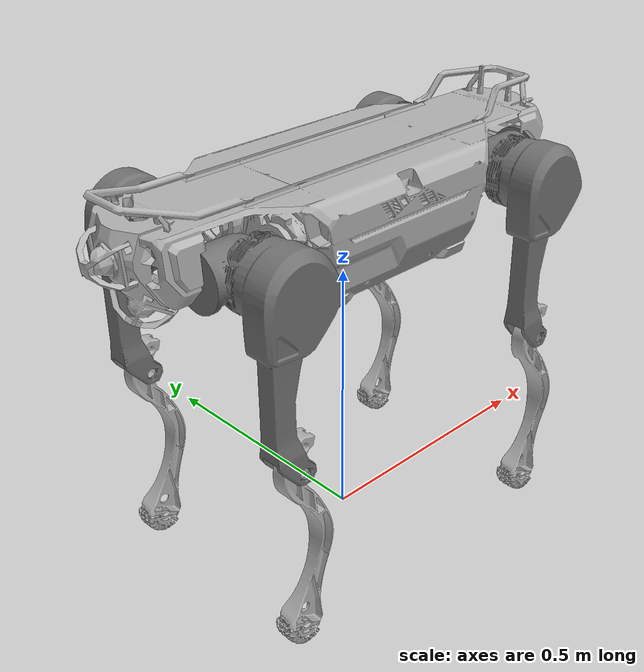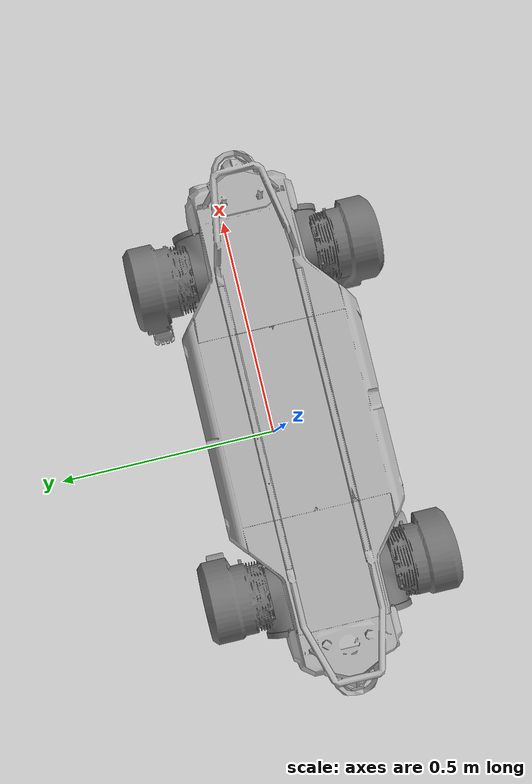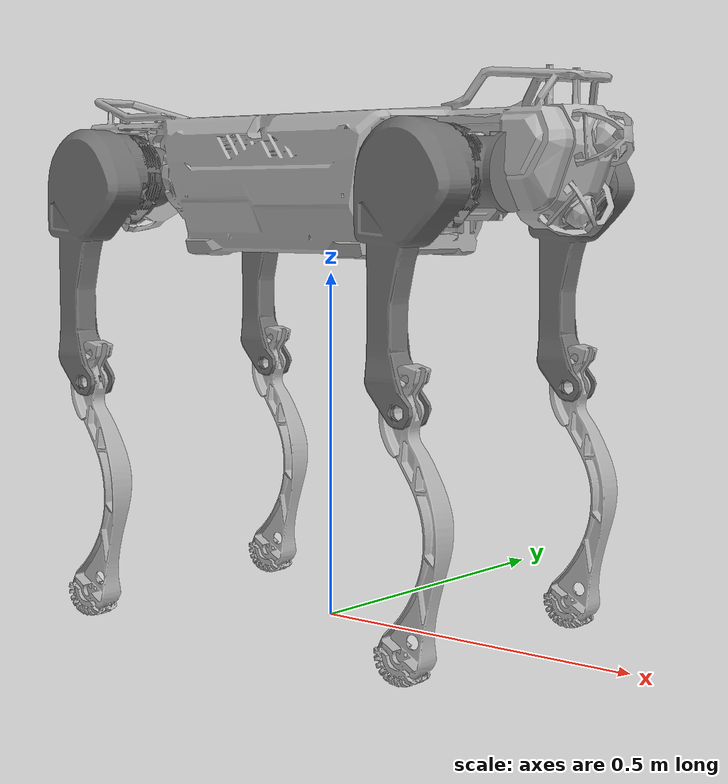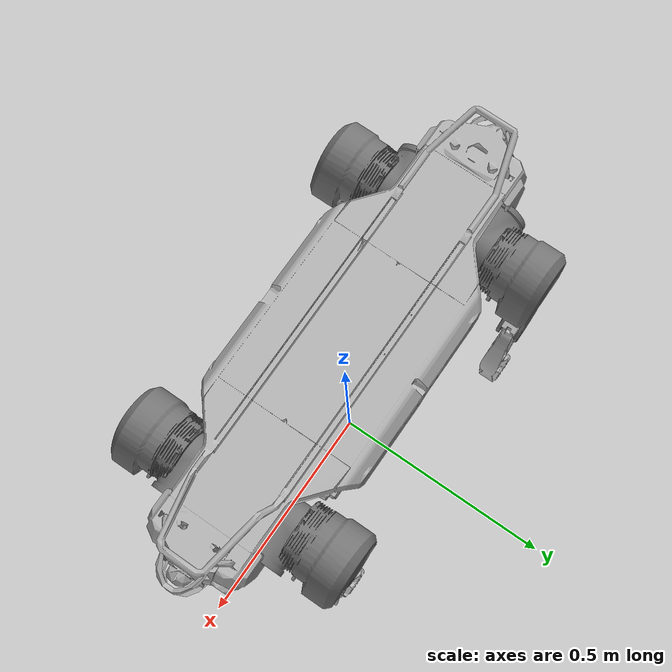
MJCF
<mujoco model="lite3">
  <compiler angle="radian" meshdir="meshes/"/>

  <default>
    <default class="x30">
      <geom friction="0.4" margin="0.001" condim="1"/>
      <joint axis="0 -1 0" damping="0.5" armature="0.01" frictionloss="0.1"/>
      <motor ctrlrange="-84 84"/>
      <default class="abduction">
        <joint axis="-1 0 0" range="-0.323 0.323"/>
      </default>
      <default class="hip">
        <joint range="-2.967 0.262"/>
      </default>
      <default class="knee">
        <joint range="0.349 2.531"/>
        <motor ctrlrange="-160 160"/>
      </default>
      <default class="visual">
        <geom type="mesh" contype="0" conaffinity="0" group="2" material="dark"/>
      </default>
      <default class="collision">
        <geom group="3"/>
        <default class="foot">
          <geom size="0.033" pos="0 0 -0.31" priority="1" condim="6"
                friction="1.4 0.02 0.01"/>
        </default>
      </default>
    </default>
  </default>

  <asset>
    <material name="metal" rgba=".7 .7 .7 1" shininess="0.25" specular="0"/>
    <material name="dark" rgba="0.45 0.45 0.45 1" shininess="0.1"/>
    <material name="transparent" rgba="1 1 1 0.01"/>

    <mesh name="torso" file="torso.stl"/>
    <mesh name="hip" file="hip.stl"/>
    <mesh name="l_thigh" file="l_thigh.stl"/>
    <mesh name="r_thigh" file="r_thigh.stl"/>
    <mesh name="shank" file="shank.stl"/>
  </asset>

  <worldbody>
    <body name="base_link" pos="0 0 0.64" childclass="x30">
      <inertial pos="-0.0029257 7.5034e-06 0.020095"
                mass="30.0"
                diaginertia="0.364306 0.597627 0.757267"/>
      <freejoint/>
      <geom size="0.22 0.13 0.075" type="box" class="collision"/>
      <geom size="0.16 0.13 0.09" type="box" pos="0 0 -0.02" class="collision"/>
      <site name="imu" pos="0 0 0"/>
      <geom type="mesh" class="visual" material="metal" mesh="torso" quat="1 -1 0 0"/>

      <body name="FL_HIP" pos="0.291 0.08 0">
        <inertial pos="-0.0018591 -0.011377 0.00027039" quat="0.492096 0.500552 0.506945 0.500295" mass="1.43"
                  diaginertia="0.00267847 0.00159184 0.00140649"/>
        <joint name="FL_HipX" class="abduction"/>
        <geom type="mesh" class="visual" material="dark" mesh="hip" quat="0 0 1 0"/>
        <geom pos="0 0.11 0" quat="1 1 0 0"
              size="0.068 0.025" type="cylinder" class="collision"/>
        <body name="FL_THIGH" pos="0 0.11675 0">
          <inertial pos="-0.0087581 -0.023554 -0.055162" quat="0.724056 0.0298504 0.00499363 0.689077" mass="4.0809"
                    diaginertia="0.0164227 0.0126096 0.00608011"/>
          <joint name="FL_HipY" class="hip"/>
          <geom size="0.04 0.125" pos="-0.02 0 -0.13" type="cylinder" class="collision"/>
          <geom type="mesh" class="visual" material="dark" mesh="l_thigh" quat="-1 1 0 0"/>
          <body name="FL_SHANK" pos="0 0 -0.3">
            <inertial pos="0.0136996 1.90812e-05 -0.137342" quat="0.707173 -0.00648366 -0.00623253 0.706983"
                      mass="0.77386" diaginertia="0.0115784 0.0112464 0.000424126"/>
            <joint name="FL_Knee" class="knee"/>
            <geom size="0.025 0.05" pos="0.02 0 -0.046" quat="0.980067 0 -0.198669 0" type="cylinder" class="collision"/>
            <geom size="0.025 0.06" pos="0.045 0 -0.155" type="cylinder" class="collision"/>
            <geom size="0.022 0.04" pos="0.025 0 -0.246" quat="0.974794 0 0.223106 0" type="cylinder" class="collision"/>
            <geom class="foot"/>
            <geom class="visual" material="metal" type="mesh" mesh="shank" quat="1 -1 0 0"/>
            <site name="FL_touch" pos="0 0 -0.31" size="0.036" material="transparent"/>
          </body>
        </body>
      </body>
      <body name="FR_HIP" pos="0.291 -0.08 0">
        <inertial pos="-0.0018591 0.011377 -2.7675e-05" quat="0.507783 0.499436 0.488975 0.503611" mass="1.43"
                  diaginertia="0.00267852 0.00159185 0.00140643"/>
        <joint name="FR_HipX" class="abduction"/>
        <geom pos="0 -0.11 0" quat="1 1 0 0"
              size="0.068 0.025" type="cylinder" class="collision"/>
        <geom type="mesh" class="visual" material="dark" mesh="hip" quat="0 0 0 1"/>
        <body name="FR_THIGH" pos="0 -0.11675 0">
          <inertial pos="-0.0087433 0.023551 -0.055154" quat="0.688998 0.00499198 0.0298429 0.724132" mass="4.0809"
                    diaginertia="0.0164227 0.0126095 0.00608033"/>
          <joint name="FR_HipY" class="hip"/>
          <geom size="0.04 0.125" pos="-0.02 0 -0.13" type="cylinder" class="collision"/>
          <geom type="mesh" class="visual" material="dark" mesh="r_thigh" quat="-1 1 0 0"/>
          <body name="FR_SHANK" pos="0 0 -0.3">
            <inertial pos="0.0136996 1.90831e-05 -0.137342" quat="0.707173 -0.00648365 -0.00623254 0.706983"
                      mass="0.77386" diaginertia="0.0115784 0.0112464 0.000424126"/>
            <joint name="FR_Knee" class="knee"/>
            <geom size="0.025 0.05" pos="0.02 0 -0.046" quat="0.980067 0 -0.198669 0" type="cylinder" class="collision"/>
            <geom size="0.025 0.06" pos="0.045 0 -0.155" type="cylinder" class="collision"/>
            <geom size="0.022 0.04" pos="0.025 0 -0.246" quat="0.974794 0 0.223106 0" type="cylinder" class="collision"/>
            <geom class="foot"/>
            <geom class="visual" material="metal" type="mesh" mesh="shank" quat="1 -1 0 0"/>
            <site name="FR_touch" pos="0 0 -0.21" size="0.026" material="transparent"/>
          </body>
        </body>
      </body>
      <body name="HL_HIP" pos="-0.291 0.08 0">
        <inertial pos="0.0018591 -0.011377 -2.7675e-05" quat="0.499436 0.507783 0.503611 0.488975" mass="1.43"
                  diaginertia="0.00267852 0.00159185 0.00140643"/>
        <joint name="HL_HipX" class="abduction"/>
        <geom pos="0 0.11 0" quat="1 1 0 0"
              size="0.068 0.025" type="cylinder" class="collision"/>
        <geom type="mesh" class="visual" material="dark" mesh="hip" quat="1 0 0 0"/>
        <body name="HL_THIGH" pos="0 0.11675 0">
          <inertial pos="-0.0087581 -0.023554 -0.055162" quat="0.724056 0.0298504 0.00499363 0.689077" mass="4.0809"
                    diaginertia="0.0164227 0.0126096 0.00608011"/>
          <joint name="HL_HipY" class="hip"/>
          <geom size="0.04 0.125" pos="-0.02 0 -0.13" type="cylinder" class="collision"/>
          <geom type="mesh" class="visual" material="dark" mesh="l_thigh" quat="-1 1 0 0"/>
          <body name="HL_SHANK" pos="0 0 -0.3">
            <inertial pos="0.0136996 1.90757e-05 -0.137342" quat="0.707173 -0.00648365 -0.00623255 0.706983"
                      mass="0.77386" diaginertia="0.0115784 0.0112464 0.000424126"/>
            <joint name="HL_Knee" class="knee"/>
            <geom size="0.025 0.05" pos="0.02 0 -0.046" quat="0.980067 0 -0.198669 0" type="cylinder" class="collision"/>
            <geom size="0.025 0.06" pos="0.045 0 -0.155" type="cylinder" class="collision"/>
            <geom size="0.022 0.04" pos="0.025 0 -0.246" quat="0.974794 0 0.223106 0" type="cylinder" class="collision"/>
            <geom class="foot"/>
            <geom class="visual" material="metal" type="mesh" mesh="shank" quat="1 -1 0 0"/>
            <site name="HL_touch" pos="0 0 -0.21" size="0.026" material="transparent"/>
          </body>
        </body>
      </body>
      <body name="HR_HIP" pos="-0.291 -0.08 0">
        <inertial pos="0.0018591 0.011377 0.00027039" quat="0.500552 0.492096 0.500295 0.506945" mass="1.43"
                  diaginertia="0.00267847 0.00159184 0.00140649"/>
        <joint name="HR_HipX" class="abduction"/>
        <geom type="mesh" class="visual" material="dark" mesh="hip" quat="0 1 0 0"/>
        <geom pos="0 -0.11 0" quat="1 1 0 0"
              size="0.068 0.025" type="cylinder" class="collision"/>
        <body name="HR_THIGH" pos="0 -0.11675 0">
          <inertial pos="-0.0087433 0.023551 -0.055154" quat="0.688998 0.00499198 0.0298429 0.724132" mass="4.0809"
                    diaginertia="0.0164227 0.0126095 0.00608033"/>
          <joint name="HR_HipY" class="hip"/>
          <geom size="0.04 0.125" pos="-0.02 0 -0.13" type="cylinder" class="collision"/>
          <geom type="mesh" class="visual" material="dark" mesh="r_thigh" quat="-1 1 0 0"/>
          <body name="HR_SHANK" pos="0 0 -0.3">
            <inertial pos="0.0136996 1.90757e-05 -0.137342" quat="0.707173 -0.00648365 -0.00623255 0.706983"
                      mass="0.77386" diaginertia="0.0115784 0.0112464 0.000424126"/>
            <joint name="HR_Knee" class="knee"/>
            <geom size="0.025 0.05" pos="0.02 0 -0.046" quat="0.980067 0 -0.198669 0" type="cylinder" class="collision"/>
            <geom size="0.025 0.06" pos="0.045 0 -0.155" type="cylinder" class="collision"/>
            <geom size="0.022 0.04" pos="0.025 0 -0.246" quat="0.974794 0 0.223106 0" type="cylinder" class="collision"/>
            <geom class="foot"/>
            <geom class="visual" material="metal" type="mesh" mesh="shank" quat="1 -1 0 0"/>
            <site name="HR_touch" pos="0 0 -0.21" size="0.026" material="transparent"/>
          </body>
        </body>
      </body>
    </body>
  </worldbody>

  <actuator>
    <motor class="abduction" name="FR_HipX" joint="FR_HipX"/>
    <motor class="hip" name="FR_HipY" joint="FR_HipY"/>
    <motor class="knee" name="FR_Knee" joint="FR_Knee"/>
    <motor class="abduction" name="FL_HipX" joint="FL_HipX"/>
    <motor class="hip" name="FL_HipY" joint="FL_HipY"/>
    <motor class="knee" name="FL_Knee" joint="FL_Knee"/>
    <motor class="abduction" name="HR_HipX" joint="HR_HipX"/>
    <motor class="hip" name="HR_HipY" joint="HR_HipY"/>
    <motor class="knee" name="HR_Knee" joint="HR_Knee"/>
    <motor class="abduction" name="HL_HipX" joint="HL_HipX"/>
    <motor class="hip" name="HL_HipY" joint="HL_HipY"/>
    <motor class="knee" name="HL_Knee" joint="HL_Knee"/>
  </actuator>

  <sensor>
    <jointpos name="FR_HipX_pos" joint="FR_HipX"/>
    <jointpos name="FR_HipY_pos" joint="FR_HipY"/>
    <jointpos name="FR_Knee_pos" joint="FR_Knee"/>
    <jointpos name="FL_HipX_pos" joint="FL_HipX"/>
    <jointpos name="FL_HipY_pos" joint="FL_HipY"/>
    <jointpos name="FL_Knee_pos" joint="FL_Knee"/>
    <jointpos name="HR_HipX_pos" joint="HR_HipX"/>
    <jointpos name="HR_HipY_pos" joint="HR_HipY"/>
    <jointpos name="HR_Knee_pos" joint="HR_Knee"/>
    <jointpos name="HL_HipX_pos" joint="HL_HipX"/>
    <jointpos name="HL_HipY_pos" joint="HL_HipY"/>
    <jointpos name="HL_Knee_pos" joint="HL_Knee"/>

    <jointvel name="FR_HipX_vel" joint="FR_HipX"/>
    <jointvel name="FR_HipY_vel" joint="FR_HipY"/>
    <jointvel name="FR_Knee_vel" joint="FR_Knee"/>
    <jointvel name="FL_HipX_vel" joint="FL_HipX"/>
    <jointvel name="FL_HipY_vel" joint="FL_HipY"/>
    <jointvel name="FL_Knee_vel" joint="FL_Knee"/>
    <jointvel name="HR_HipX_vel" joint="HR_HipX"/>
    <jointvel name="HR_HipY_vel" joint="HR_HipY"/>
    <jointvel name="HR_Knee_vel" joint="HR_Knee"/>
    <jointvel name="HL_HipX_vel" joint="HL_HipX"/>
    <jointvel name="HL_HipY_vel" joint="HL_HipY"/>
    <jointvel name="HL_Knee_vel" joint="HL_Knee"/>

    <jointactuatorfrc name="FR_HipX_torque" joint="FR_HipX" noise="0.01"/>
    <jointactuatorfrc name="FR_HipY_torque" joint="FR_HipY" noise="0.01"/>
    <jointactuatorfrc name="FR_Knee_torque" joint="FR_Knee" noise="0.01"/>
    <jointactuatorfrc name="FL_HipX_torque" joint="FL_HipX" noise="0.01"/>
    <jointactuatorfrc name="FL_HipY_torque" joint="FL_HipY" noise="0.01"/>
    <jointactuatorfrc name="FL_Knee_torque" joint="FL_Knee" noise="0.01"/>
    <jointactuatorfrc name="HR_HipX_torque" joint="HR_HipX" noise="0.01"/>
    <jointactuatorfrc name="HR_HipY_torque" joint="HR_HipY" noise="0.01"/>
    <jointactuatorfrc name="HR_Knee_torque" joint="HR_Knee" noise="0.01"/>
    <jointactuatorfrc name="HL_HipX_torque" joint="HL_HipX" noise="0.01"/>
    <jointactuatorfrc name="HL_HipY_torque" joint="HL_HipY" noise="0.01"/>
    <jointactuatorfrc name="HL_Knee_torque" joint="HL_Knee" noise="0.01"/>

    <framequat name="imu_quat" objtype="site" objname="imu"/>
    <gyro name="imu_gyro" site="imu"/>
    <accelerometer name="imu_acc" site="imu"/>

    <framepos name="frame_pos" objtype="site" objname="imu"/>
    <framelinvel name="frame_vel" objtype="site" objname="imu"/>

    <touch name="FR_touch" site="FR_touch"/>
    <touch name="FL_touch" site="FL_touch"/>
    <touch name="HR_touch" site="HR_touch"/>
    <touch name="HL_touch" site="HL_touch"/>
  </sensor>

  <keyframe>
    <key name="home" qpos="0 0 0.15 1 0 0 0 -0.32 -2.9 2.5 0.32 -2.9 2.5 -0.32 -2.9 2.5 0.32 -2.9 2.5"
         ctrl="0 0 0 0 0 0 0 0 0 0 0 0"/>
  </keyframe>
</mujoco>
